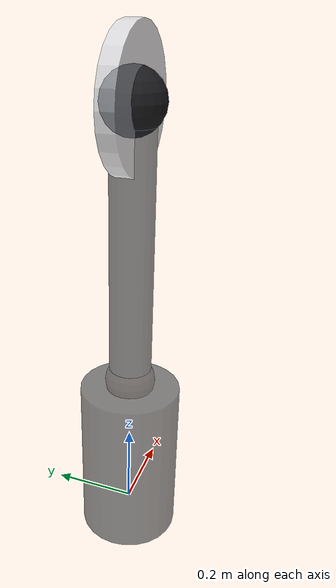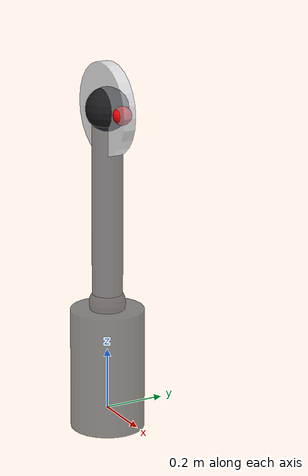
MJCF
<mujoco model="wheel_on_stick">
    <compiler angle="radian"/>
    <option timestep="0.002" gravity="0 0 -9.81"/>

    <worldbody>

        <!-- Visual pedestal under the hinge -->
        <geom name="pedestal" type="cylinder"
              pos="0 0 0.14"
              size="0.12 0.2"
              contype="0" conaffinity="0"
              rgba="0.18 0.20 0.22 0.6"/>

        <camera name="side"
                pos="0 -4 1.7"
                quat="0.9239 0.3827 0 0"/>

        <body name="stick" pos="0 0 0.3">
            <joint name="stick_hinge"
                   type="hinge"
                   axis="0 1 0"/>

            <geom name="stick_geom" type="capsule"
                  fromto="0 0 0  0 0 0.7"
                  mass="0.6"
                  size="0.05"
                  rgba="0.14 0.16 0.19 0.6"
                  contype="0"
                  conaffinity="0"/>

            <!-- Small physical mass near the base to avoid an unrealistically top-heavy link -->
            <geom name="base_counterweight" type="sphere"
                  pos="0 0 0.06"
                  size="0.06"
                  mass="0.45"
                  rgba="0.10 0.10 0.11 0.6"
                  contype="0"
                  conaffinity="0"/>

            <body name="wheel" pos="0 0 0.7">
                <joint name="wheel_spin"
                       type="hinge"
                       axis="0 1 0"/>

                <geom name="wheel_rim" type="cylinder"
                      size="0.15 0.02"
                      mass="0.5"
                      quat="0.7071 0.7071 0 0"
                      rgba="0.82 0.84 0.87 0.7"
                      contype="0"
                      conaffinity="0"/>

                  <geom name="spot" type="sphere"
                        pos = "0.1 0 0"
                        size="0.03"
                        density = "0"
                        rgba="1 0 0 1.0"
                        contype="0"
                        conaffinity="0"/>

                <geom name="wheel_hub" type="sphere"
                      size="0.07"
                      mass="0.25"
                      rgba="0.10 0.10 0.11 1.0"
                      contype="0"
                      conaffinity="0"/>
            </body>
        </body>
    </worldbody>

    <actuator>
        <motor name="wheel_motor"
               joint="wheel_spin"
               ctrlrange="-150 150"/>
    </actuator>
</mujoco>
